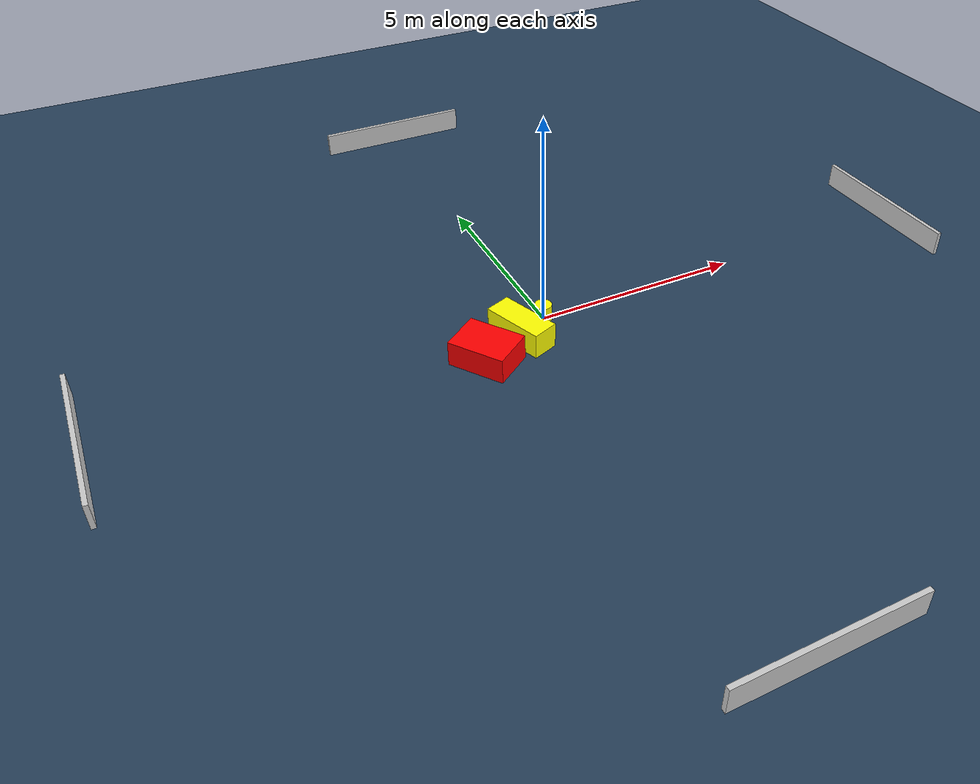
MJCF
<?xml version="1.0" ?>
<mujoco model="generated_environment">
  <option timestep="0.01" integrator="RK4" cone="elliptic"/>
  <default>
    <geom density="1"/>
  </default>
  <asset>
    <texture builtin="gradient" height="3072" name="skybox" rgb1="0.3 0.5 0.7" rgb2="0 0 0" type="skybox" width="512"/>
    <texture builtin="checker" height="300" name="groundplane" rgb1="0.2 0.3 0.4" rgb2="0.1 0.2 0.3" type="2d" width="300"/>
    <material name="groundplane" reflectance="0.2" texrepeat="5 5" texture="groundplane"/>
  </asset>
  <worldbody>
    <light dir="0 0 -1" directional="true" pos="0 0 1.5"/>
    <geom condim="3" friction="0.5 0.005 0.001" material="groundplane" name="floor" pos="0 0 0" size="0 0 0.05" type="plane"/>
    <body name="walls">
      <geom name="wall_1" condim="4" pos="-10.0 0.0 0.3" rgba="0.800000011920929 0.800000011920929 0.800000011920929 1.0" size="0.05 2.0 0.3" type="box"/>
      <geom name="wall_2" condim="4" pos="10.0 0.0 0.3" rgba="0.800000011920929 0.800000011920929 0.800000011920929 1.0" size="0.05 2.0 0.3" type="box"/>
      <geom name="wall_3" condim="4" pos="0.0 -10.0 0.3" rgba="0.800000011920929 0.800000011920929 0.800000011920929 1.0" size="2.0 0.05 0.3" type="box"/>
      <geom name="wall_4" condim="4" pos="0.0 10.0 0.3" rgba="0.800000011920929 0.800000011920929 0.800000011920929 1.0" size="2.0 0.05 0.3" type="box"/>
    </body>
    <body name="robot">
      <joint name="joint_x" type="slide" pos="0 0 0" axis="1 0 0"/>
      <joint name="joint_y" type="slide" pos="0 0 0" axis="0 1 0"/>
      <geom name="robot" type="cylinder" pos="0.0 0.0 0.2" size="0.2 0.2 0.0" mass="5.0" friction="1.0 0.005 0.0001" condim="4" rgba="1.0 1.0 0.0 1.0"/>
    </body>
    <body name="obstacle_1_movable">
      <geom name="obstacle_1_movable" condim="4" pos="-0.7607926437408248 -0.4290884560938372 0.3" euler="0 0 290.5388490864559" friction="0.0 0.005 0.001" rgba="1.0 1.0 0.0 1.0" size="0.7386865980182884 0.3076005424754017 0.3" type="box" mass="0.1"/>
      <joint type="free"/>
    </body>
    <body name="obstacle_2_static">
      <geom name="obstacle_2_static" condim="4" pos="-1.7794721017501023 -0.8311240917550554 0.3" euler="0 0 215.35297717926713" friction="0.0 0.005 0.001" rgba="1.0 0.0 0.0 1.0" size="0.4928987057037774 0.6744931951133373 0.3" type="box"/>
    </body>
  </worldbody>
  <actuator>
    <motor name="actuator_x" joint="joint_x" gear="1" ctrlrange="-1 1"/>
    <motor name="actuator_y" joint="joint_y" gear="1" ctrlrange="-1 1"/>
  </actuator>
</mujoco>
